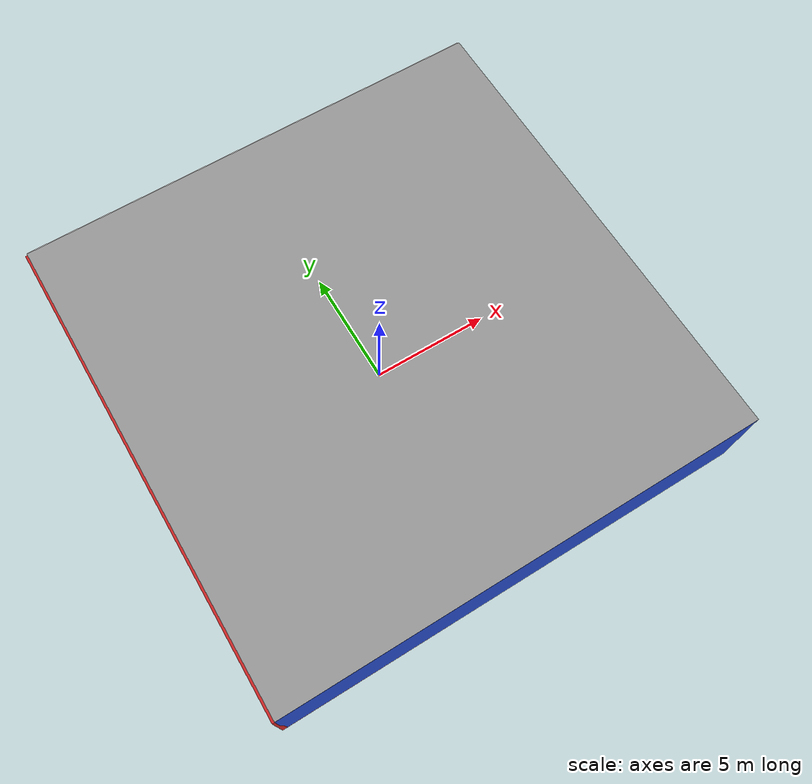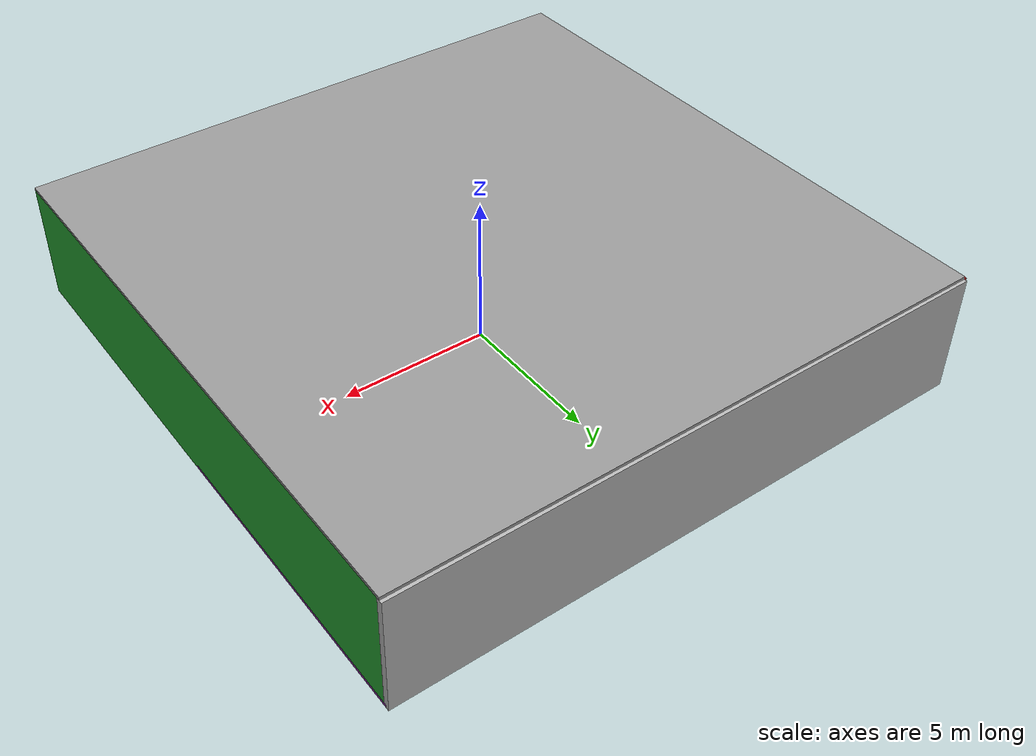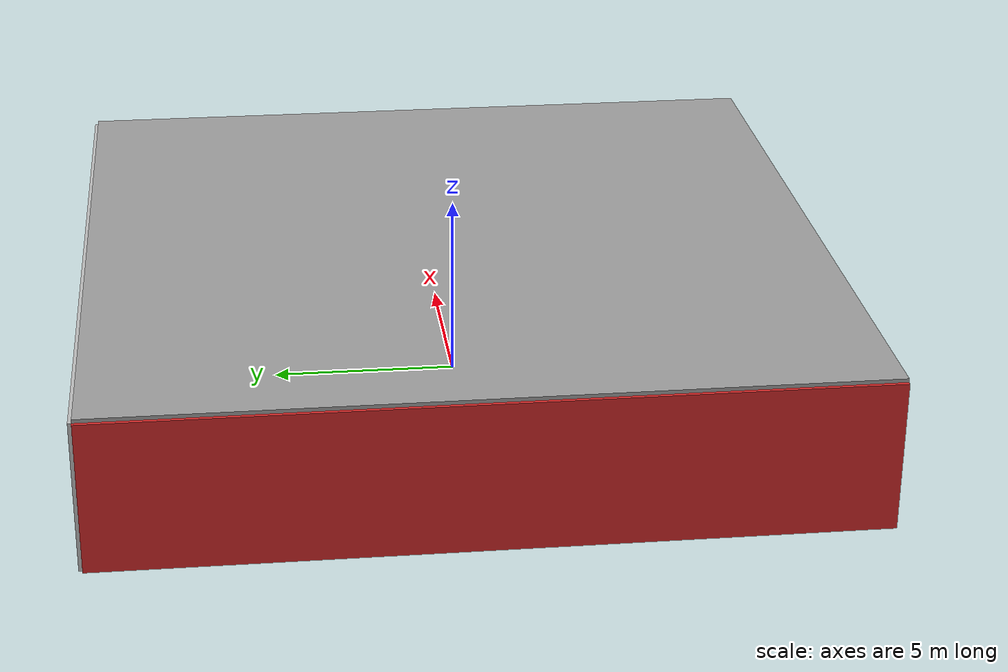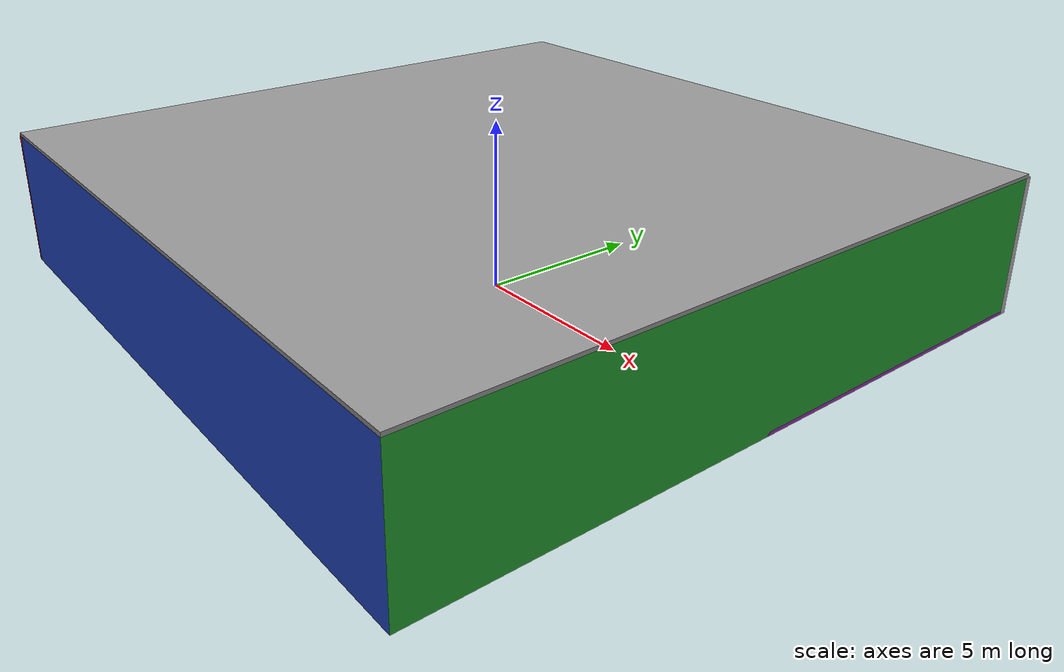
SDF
<sdf version="1.4">
 <world name="default">
  <physics type="ode">
   <max_step_size>0.001</max_step_size>
   <real_time_factor>1</real_time_factor>
   <real_time_update_rate>1000</real_time_update_rate>
   <gravity>0 0 -9.8</gravity>
  </physics>
  <scene><ambient>0.4 0.4 0.4 1</ambient><background>0.7 0.7 0.7 1</background><shadows>1</shadows></scene>
  <model name="Surrounding">
   <static>1</static>
   <link name="Ceiling">
    <collision name="Ceiling_Collision"><geometry><box><size>20 20 0.1</size></box></geometry></collision>
    <visual name="Ceiling_Visual">
     <geometry><box><size>20 20 0.1</size></box></geometry>
     <material>
      <script><uri>file://media/materials/scripts/gazebo.material</uri><name>Gazebo/Grey</name></script>
     </material>
    </visual>
    <pose>0 0 4.05 0 0 0</pose>
   </link>
   <link name="Wall_South">
    <collision name="Wall_South_Collision">
     <geometry><box><size>20 0 4</size></box></geometry>
     <pose>0 0 2 0 -0 0</pose>
    </collision>
    <visual name="Wall_South_Visual">
     <pose>0 0 2 0 -0 0</pose>
     <geometry><box><size>20 0 4</size></box></geometry>
     <material>
      <script><uri>file://media/materials/scripts/gazebo.material</uri><name>Gazebo/BlueGlow</name></script>
     </material>
    </visual>
    <velocity_decay><linear>0</linear><angular>0</angular></velocity_decay>
    <pose>0 -10 0 0 -0 0</pose>
   </link>
   <link name="Wall_East">
    <collision name="Wall_21_Collision">
     <geometry><box><size>20 0 4</size></box></geometry>
     <pose>0 0 2 0 -0 0</pose>
    </collision>
    <visual name="Wall_21_Visual">
     <pose>0 0 2 0 -0 0</pose>
     <geometry><box><size>20 0 4</size></box></geometry>
     <material>
      <script><uri>file://media/materials/scripts/gazebo.material</uri><name>Gazebo/GreenGlow</name></script>
     </material>
    </visual>
    <velocity_decay><linear>0</linear><angular>0</angular></velocity_decay>
    <pose>10 0 0 0 -0 1.5708</pose>
   </link>
   <link name="Wall_North">
    <collision name="Wall_22_Collision">
     <geometry><box><size>20 0.2 4</size></box></geometry>
     <pose>0 0 2 0 -0 0</pose>
    </collision>
    <visual name="Wall_22_Visual">
     <pose>0 0 2 0 -0 0</pose>
     <geometry><box><size>20 0.2 4</size></box></geometry>
     <material>
      <script><uri>file://media/materials/scripts/gazebo.material</uri><name>Gazebo/CloudySky</name></script>
     </material>
    </visual>
    <velocity_decay><linear>0</linear><angular>0</angular></velocity_decay>
    <pose>0 10 0 0 -0 0</pose>
   </link>
   <link name="Wall_West">
    <collision name="Wall_23_Collision">
     <geometry><box><size>20 0.2 4</size></box></geometry>
     <pose>0 0 2 0 -0 0</pose>
    </collision>
    <visual name="Wall_23_Visual">
     <pose>0 0 2 0 -0 0</pose>
     <geometry><box><size>20 0.2 4</size></box></geometry>
     <material>
      <script><uri>file://media/materials/scripts/gazebo.material</uri><name>Gazebo/Red</name></script>
     </material>
    </visual>
    <velocity_decay><linear>0</linear><angular>0</angular></velocity_decay>
    <pose>-10 0 0 0 0 -1.5708</pose>
   </link>
   <link name="Ground_link">
    <collision name="collision">
     <pose>0 0 .05 0 -0 0</pose>
     <geometry><box><size>20 20 0.1</size></box></geometry>
    </collision>
    <visual name="visual">
     <pose>0 0 .05 0 -0 0</pose>
     <geometry><box><size>20 20 0.1</size></box></geometry>
     <material>
      <script><uri>file://media/materials/scripts/gazebo.material</uri><name>Gazebo/PurpleGlow</name></script>
     </material>
    </visual>
   </link>
   <static>1</static>
  </model>
  <spherical_coordinates>
   <surface_model>EARTH_WGS84</surface_model>
   <latitude_deg>0</latitude_deg>
   <longitude_deg>0</longitude_deg>
   <elevation>0</elevation>
   <heading_deg>0</heading_deg>
  </spherical_coordinates>
  <light name="lightball_0" type="diffuse">
   <diffuse>0.8 0.8 0.8 1</diffuse>
   <specular>0.2 0.2 0.2 1</specular>
   <attenuation>
    <range>100</range>
    <constant>0.7</constant>
    <linear>0.01</linear>
    <quadratic>0.001</quadratic>
   </attenuation>
   <direction>-0.5 0.1 -0.9</direction>
   <pose>-9.05319794973 9.47085802925 3.02288020561 0 0 0</pose>
  </light>
  <light name="lightball_1" type="diffuse">
   <diffuse>0.8 0.8 0.8 1</diffuse>
   <specular>0.2 0.2 0.2 1</specular>
   <attenuation>
    <range>100</range>
    <constant>0.7</constant>
    <linear>0.01</linear>
    <quadratic>0.001</quadratic>
   </attenuation>
   <direction>-0.5 0.1 -0.9</direction>
   <pose>1.6025194261 7.12592283062 3.83272354798 0 0 0</pose>
  </light>
  <light name="lightball_2" type="diffuse">
   <diffuse>0.8 0.8 0.8 1</diffuse>
   <specular>0.2 0.2 0.2 1</specular>
   <attenuation>
    <range>100</range>
    <constant>0.7</constant>
    <linear>0.01</linear>
    <quadratic>0.001</quadratic>
   </attenuation>
   <direction>-0.5 0.1 -0.9</direction>
   <pose>2.52942865504 4.59076854205 2.61232823911 0 0 0</pose>
  </light>
  <light name="lightball_3" type="diffuse">
   <diffuse>0.8 0.8 0.8 1</diffuse>
   <specular>0.2 0.2 0.2 1</specular>
   <attenuation>
    <range>100</range>
    <constant>0.7</constant>
    <linear>0.01</linear>
    <quadratic>0.001</quadratic>
   </attenuation>
   <direction>-0.5 0.1 -0.9</direction>
   <pose>-7.35967931964 -3.51944946118 1.0028358735 0 0 0</pose>
  </light>
  <light name="lightball_4" type="diffuse">
   <diffuse>0.8 0.8 0.8 1</diffuse>
   <specular>0.2 0.2 0.2 1</specular>
   <attenuation>
    <range>100</range>
    <constant>0.7</constant>
    <linear>0.01</linear>
    <quadratic>0.001</quadratic>
   </attenuation>
   <direction>-0.5 0.1 -0.9</direction>
   <pose>-8.4530914498 7.07497690789 0.943574721034 0 0 0</pose>
  </light>
  <light name="lightball_5" type="diffuse">
   <diffuse>0.8 0.8 0.8 1</diffuse>
   <specular>0.2 0.2 0.2 1</specular>
   <attenuation>
    <range>100</range>
    <constant>0.7</constant>
    <linear>0.01</linear>
    <quadratic>0.001</quadratic>
   </attenuation>
   <direction>-0.5 0.1 -0.9</direction>
   <pose>-8.46435211664 0.7768382737 3.36576591283 0 0 0</pose>
  </light>
  <light name="lightball_6" type="diffuse">
   <diffuse>0.8 0.8 0.8 1</diffuse>
   <specular>0.2 0.2 0.2 1</specular>
   <attenuation>
    <range>100</range>
    <constant>0.7</constant>
    <linear>0.01</linear>
    <quadratic>0.001</quadratic>
   </attenuation>
   <direction>-0.5 0.1 -0.9</direction>
   <pose>-8.38652107397 -4.89915196336 1.56383495985 0 0 0</pose>
  </light>
  <light name="lightball_7" type="diffuse">
   <diffuse>0.8 0.8 0.8 1</diffuse>
   <specular>0.2 0.2 0.2 1</specular>
   <attenuation>
    <range>100</range>
    <constant>0.7</constant>
    <linear>0.01</linear>
    <quadratic>0.001</quadratic>
   </attenuation>
   <direction>-0.5 0.1 -0.9</direction>
   <pose>-2.18153447749 -5.16999881168 1.91380723311 0 0 0</pose>
  </light>
  <light name="lightball_8" type="diffuse">
   <diffuse>0.8 0.8 0.8 1</diffuse>
   <specular>0.2 0.2 0.2 1</specular>
   <attenuation>
    <range>100</range>
    <constant>0.7</constant>
    <linear>0.01</linear>
    <quadratic>0.001</quadratic>
   </attenuation>
   <direction>-0.5 0.1 -0.9</direction>
   <pose>-6.18124160467 -8.28698680327 1.80195241337 0 0 0</pose>
  </light>
  <light name="lightball_9" type="diffuse">
   <diffuse>0.8 0.8 0.8 1</diffuse>
   <specular>0.2 0.2 0.2 1</specular>
   <attenuation>
    <range>100</range>
    <constant>0.7</constant>
    <linear>0.01</linear>
    <quadratic>0.001</quadratic>
   </attenuation>
   <direction>-0.5 0.1 -0.9</direction>
   <pose>-9.91061993884 9.12853415264 3.81881747519 0 0 0</pose>
  </light>
  <include>
   <uri>model://construction_cone</uri>
   <pose>-7.35975449922 -4.47652223225 0 0 0 0.748261040687</pose>
  </include>
  <include>
   <uri>model://construction_cone</uri>
   <pose>-7.63982804723 -1.72606393174 0 0 0 2.17911170956</pose>
  </include>
  <include><uri>model://cabinet</uri><pose>-1.48193529605 -5.12152583507 0 0 0 0.2057653032</pose></include>
  <include><uri>model://table</uri><pose>2.00332857199 -4.79531513893 0 0 0 0.79571107342</pose></include>
  <include><uri>model://cabinet</uri><pose>1.94507518544 1.05390925574 0 0 0 0.359527843889</pose></include>
  <include>
   <uri>model://textured_shapes</uri>
   <pose>1.21787523358 6.72923828818 0 0 0 2.18102310573</pose>
  </include>
  <include><uri>model://cabinet</uri><pose>3.88360966767 -1.43156161813 0 0 0 0.419763404985</pose></include>
 </world>
</sdf>

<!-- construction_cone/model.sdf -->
<sdf version="1.5">
  <model name="Construction Cone">
    <link name="link">
      <collision name="collision">
        <geometry>
          <mesh>
            <scale>10 10 10</scale>
            <uri>file://isr-testbed/construction_cone/meshes/construction_cone.dae</uri>
          </mesh>
        </geometry>
      </collision>
      <visual name="visual">
        <geometry>
          <mesh>
            <scale>10 10 10</scale>
            <uri>file://isr-testbed/construction_cone/meshes/construction_cone.dae</uri>
          </mesh>
        </geometry>
      </visual>
    </link>
  </model>
</sdf>

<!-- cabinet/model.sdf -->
<sdf version="1.5">
  <model name="cabinet">
    <static>true</static>
    <link name="cabinet_bottom_plate">
      <inertial>
        <pose>0 0 -1 0 0 0</pose>
        <inertia>
          <ixx>2.050000</ixx>
          <ixy>0</ixy>
          <ixz>0</ixz>
          <iyy>2.050000</iyy>
          <iyz>0</iyz>
          <izz>2.050000</izz>
        </inertia>
        <mass>25.000000</mass>
      </inertial>
      <collision name="cabinet_bottom_plate_geom">
        <pose>0 0 0.010000 0 0 0</pose>
        <geometry>
          <box>
            <size>0.450000 0.450000 0.020000</size>
          </box>
        </geometry>
      </collision>
      <visual name="cabinet_bottom_plate_geom_visual">
        <pose>0 0 0.010000 0 0 0</pose>
        <geometry>
          <box>
            <size>0.450000 0.450000 0.020000</size>
          </box>
        </geometry>
        <material>
          <script>
            <uri>model://media/materials/scripts/gazebo.material</uri>
            <name>Gazebo/Wood</name>
          </script>
        </material>
      </visual>
      <collision name="cabinet_bottom_plate_geom_cabinet_back_plate">
        <pose>0.235000 0 0.510000 0 0 0</pose>
        <geometry>
          <box>
            <size>0.020000 0.450000 1.020000</size>
          </box>
        </geometry>
      </collision>
      <visual name="cabinet_bottom_plate_geom_cabinet_back_plate_visual">
        <pose>0.235000 0 0.510000 0 0 0</pose>
        <geometry>
          <box>
            <size>0.020000 0.450000 1.020000</size>
          </box>
        </geometry>
        <material>
          <script>
            <uri>model://media/materials/scripts/gazebo.material</uri>
            <name>Gazebo/Wood</name>
          </script>
        </material>
      </visual>
      <collision name="cabinet_bottom_plate_geom_cabinet_left_plate">
        <pose>0 0.235000 0.510000 0 0 0</pose>
        <geometry>
          <box>
            <size>0.450000 0.020000 1.020000</size>
          </box>
        </geometry>
      </collision>
      <visual name="cabinet_bottom_plate_geom_cabinet_left_plate_visual">
        <pose>0 0.235000 0.510000 0 0 0</pose>
        <geometry>
          <box>
            <size>0.450000 0.020000 1.020000</size>
          </box>
        </geometry>
        <material>
          <script>
            <uri>model://media/materials/scripts/gazebo.material</uri>
            <name>Gazebo/Wood</name>
          </script>
        </material>
      </visual>
      <collision name="cabinet_bottom_plate_geom_cabinet_middle_plate">
        <pose>0 0 0.510000 0 0 0</pose>
        <geometry>
          <box>
            <size>0.450000 0.450000 0.020000</size>
          </box>
        </geometry>
      </collision>
      <visual name="cabinet_bottom_plate_geom_cabinet_middle_plate_visual">
        <pose>0 0 0.510000 0 0 0</pose>
        <geometry>
          <box>
            <size>0.450000 0.450000 0.020000</size>
          </box>
        </geometry>
        <material>
          <script>
            <uri>model://media/materials/scripts/gazebo.material</uri>
            <name>Gazebo/Wood</name>
          </script>
        </material>
      </visual>
      <collision name="cabinet_bottom_plate_geom_cabinet_right_plate">
        <pose>0 -0.235000 0.510000 0 0 0</pose>
        <geometry>
          <box>
            <size>0.450000 0.020000 1.020000</size>
          </box>
        </geometry>
      </collision>
      <visual name="cabinet_bottom_plate_geom_cabinet_right_plate_visual">
        <pose>0 -0.235000 0.510000 0 0 0</pose>
        <geometry>
          <box>
            <size>0.450000 0.020000 1.020000</size>
          </box>
        </geometry>
        <material>
          <script>
            <uri>model://media/materials/scripts/gazebo.material</uri>
            <name>Gazebo/Wood</name>
          </script>
        </material>
      </visual>
      <collision name="cabinet_bottom_plate_geom_cabinet_top_plate">
        <pose>0 0 1.010000 0 0 0</pose>
        <geometry>
          <box>
            <size>0.450000 0.450000 0.020000</size>
          </box>
        </geometry>
      </collision>
      <visual name="cabinet_bottom_plate_geom_cabinet_top_plate_visual">
        <pose>0 0 1.010000 0 0 0</pose>
        <geometry>
          <box>
            <size>0.450000 0.450000 0.020000</size>
          </box>
        </geometry>
        <material>
          <script>
            <uri>model://media/materials/scripts/gazebo.material</uri>
            <name>Gazebo/Wood</name>
          </script>
        </material>
      </visual>
    </link>
  </model>
</sdf>

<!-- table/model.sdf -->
<sdf version="1.5">
  <model name="table">
    <static>true</static>
    <link name="link">
      <collision name="surface">
        <pose>0 0 1.0 0 0 0</pose>
        <geometry>
          <box>
            <size>1.5 0.8 0.03</size>
          </box>
        </geometry>
        <surface>
          <friction>
            <ode>
              <mu>0.6</mu>
              <mu2>0.6</mu2>
            </ode>
          </friction>
        </surface>
      </collision>
      <visual name="visual1">
        <pose>0 0 1.0 0 0 0</pose>
        <geometry>
          <box>
            <size>1.5 0.8 0.03</size>
          </box>
        </geometry>
        <material>
          <script>
            <uri>model://media/materials/scripts/gazebo.material</uri>
            <name>Gazebo/Wood</name>
          </script>
        </material>
      </visual>
      <collision name="front_left_leg">
        <pose>0.68 0.38 0.5 0 0 0</pose>
        <geometry>
          <cylinder>
            <radius>0.02</radius>
            <length>1.0</length>
          </cylinder>
        </geometry>
      </collision>
      <visual name="front_left_leg">
        <pose>0.68 0.38 0.5 0 0 0</pose>
        <geometry>
          <cylinder>
            <radius>0.02</radius>
            <length>1.0</length>
          </cylinder>
        </geometry>
        <material>
          <script>
            <uri>model://media/materials/scripts/gazebo.material</uri>
            <name>Gazebo/Grey</name>
          </script>
        </material>
      </visual>
      <collision name="front_right_leg">
        <pose>0.68 -0.38 0.5 0 0 0</pose>
        <geometry>
          <cylinder>
            <radius>0.02</radius>
            <length>1.0</length>
          </cylinder>
        </geometry>
      </collision>
      <visual name="front_right_leg">
        <pose>0.68 -0.38 0.5 0 0 0</pose>
        <geometry>
          <cylinder>
            <radius>0.02</radius>
            <length>1.0</length>
          </cylinder>
        </geometry>
        <material>
          <script>
            <uri>model://media/materials/scripts/gazebo.material</uri>
            <name>Gazebo/Grey</name>
          </script>
        </material>
      </visual>
      <collision name="back_right_leg">
        <pose>-0.68 -0.38 0.5 0 0 0</pose>
        <geometry>
          <cylinder>
            <radius>0.02</radius>
            <length>1.0</length>
          </cylinder>
        </geometry>
      </collision>
      <visual name="back_right_leg">
        <pose>-0.68 -0.38 0.5 0 0 0</pose>
        <geometry>
          <cylinder>
            <radius>0.02</radius>
            <length>1.0</length>
          </cylinder>
        </geometry>
        <material>
          <script>
            <uri>model://media/materials/scripts/gazebo.material</uri>
            <name>Gazebo/Grey</name>
          </script>
        </material>
      </visual>
      <collision name="back_left_leg">
        <pose>-0.68 0.38 0.5 0 0 0</pose>
        <geometry>
          <cylinder>
            <radius>0.02</radius>
            <length>1.0</length>
          </cylinder>
        </geometry>
      </collision>
      <visual name="back_left_leg">
        <pose>-0.68 0.38 0.5 0 0 0</pose>
        <geometry>
          <cylinder>
            <radius>0.02</radius>
            <length>1.0</length>
          </cylinder>
        </geometry>
        <material>
          <script>
            <uri>model://media/materials/scripts/gazebo.material</uri>
            <name>Gazebo/Grey</name>
          </script>
        </material>
      </visual>
    </link>
  </model>
</sdf>

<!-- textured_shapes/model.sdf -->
<sdf version="1.6">
  <model name="textured_shapes">
    <pose>0 0 0.5 0 0 0</pose>
    <link name="box">
      <pose>0 -1.5 0 0 0 0</pose>
      <collision name="collision">
        <geometry>
          <box>
            <size>1 1 1</size>
          </box>
        </geometry>
      </collision>
      <visual name="visual">
        <geometry>
          <box>
            <size>1 1 1</size>
          </box>
        </geometry>
        <material>
          <script>
            <uri>model://../model_source/models/textured_shapes/materials/scripts</uri>
            <uri>model://../model_source/models/textured_shapes/materials/textures</uri>
            <name>TexturedShape/Squares</name>
          </script>
        </material>
      </visual>
    </link>
    <link name="sphere">
      <collision name="collision">
        <geometry>
          <sphere>
            <radius>0.5</radius>
          </sphere>
        </geometry>
      </collision>
      <visual name="visual">
        <geometry>
          <sphere>
            <radius>0.5</radius>
          </sphere>
        </geometry>
        <material>
          <script>
            <uri>model://../model_source/models/textured_shapes/materials/scripts</uri>
            <uri>model://../model_source/models/textured_shapes/materials/textures</uri>
            <name>TexturedShape/Squares</name>
          </script>
        </material>
      </visual>
    </link>
    <link name="cylinder">
      <pose>0 1.5 0 0 0 0</pose>
      <collision name="collision">
        <geometry>
          <cylinder>
            <radius>0.5</radius>
            <length>1</length>
          </cylinder>
        </geometry>
      </collision>
      <visual name="visual">
        <geometry>
          <cylinder>
            <radius>0.5</radius>
            <length>1</length>
          </cylinder>
        </geometry>
        <material>
          <script>
            <uri>model://../model_source/models/textured_shapes/materials/scripts</uri>
            <uri>model://../model_source/models/textured_shapes/materials/textures</uri>
            <name>TexturedShape/Squares</name>
          </script>
        </material>
      </visual>
    </link>
  </model>
</sdf>
